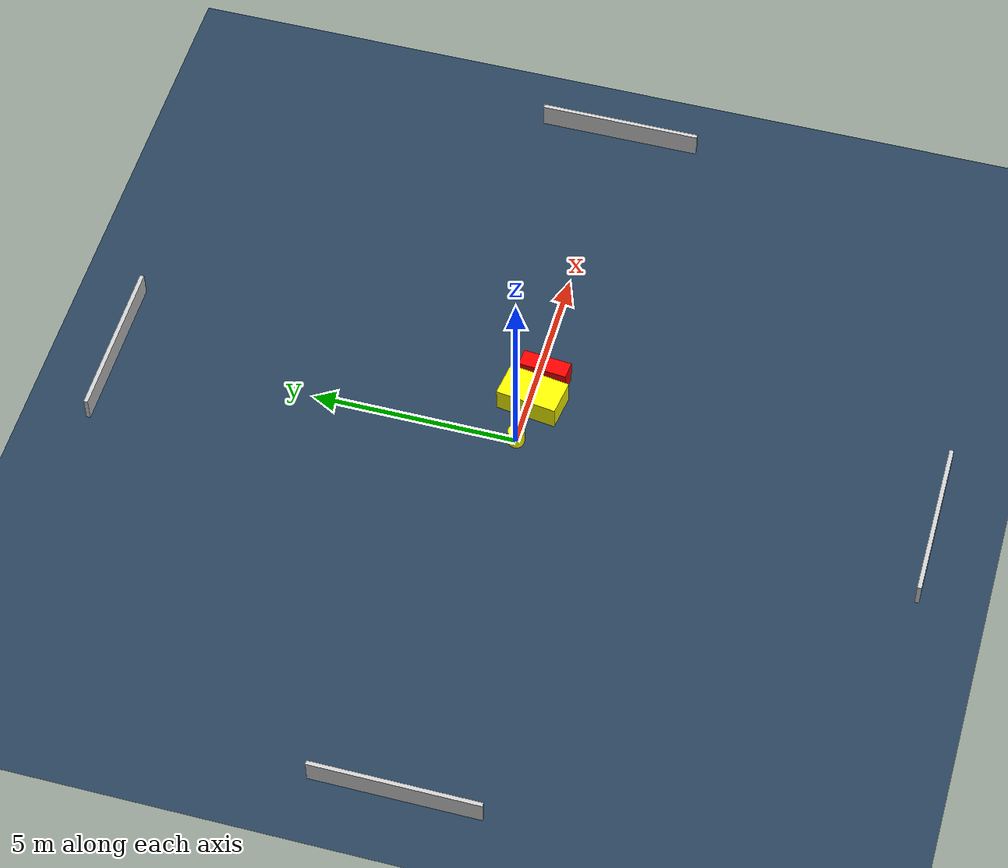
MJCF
<?xml version="1.0" ?>
<mujoco model="generated_environment">
  <option timestep="0.01" integrator="RK4" cone="elliptic"/>
  <default>
    <geom density="1"/>
  </default>
  <asset>
    <texture builtin="gradient" height="3072" name="skybox" rgb1="0.3 0.5 0.7" rgb2="0 0 0" type="skybox" width="512"/>
    <texture builtin="checker" height="300" name="groundplane" rgb1="0.2 0.3 0.4" rgb2="0.1 0.2 0.3" type="2d" width="300"/>
    <material name="groundplane" reflectance="0.2" texrepeat="5 5" texture="groundplane"/>
  </asset>
  <worldbody>
    <light dir="0 0 -1" directional="true" pos="0 0 1.5"/>
    <geom condim="3" friction="0.5 0.005 0.001" material="groundplane" name="floor" pos="0 0 0" size="0 0 0.05" type="plane"/>
    <body name="walls">
      <geom name="wall_1" condim="4" pos="-10.0 0.0 0.3" rgba="0.800000011920929 0.800000011920929 0.800000011920929 1.0" size="0.05 2.0 0.3" type="box"/>
      <geom name="wall_2" condim="4" pos="10.0 0.0 0.3" rgba="0.800000011920929 0.800000011920929 0.800000011920929 1.0" size="0.05 2.0 0.3" type="box"/>
      <geom name="wall_3" condim="4" pos="0.0 -10.0 0.3" rgba="0.800000011920929 0.800000011920929 0.800000011920929 1.0" size="2.0 0.05 0.3" type="box"/>
      <geom name="wall_4" condim="4" pos="0.0 10.0 0.3" rgba="0.800000011920929 0.800000011920929 0.800000011920929 1.0" size="2.0 0.05 0.3" type="box"/>
    </body>
    <body name="robot">
      <joint name="joint_x" type="slide" pos="0 0 0" axis="1 0 0"/>
      <joint name="joint_y" type="slide" pos="0 0 0" axis="0 1 0"/>
      <geom name="robot" type="cylinder" pos="0.0 0.0 0.2" size="0.2 0.2 0.0" mass="5.0" friction="1.0 0.005 0.0001" condim="4" rgba="1.0 1.0 0.0 1.0"/>
    </body>
    <body name="obstacle_1_movable">
      <geom name="obstacle_1_movable" condim="4" pos="1.1900652257086677 -0.08108834144404523 0.3" euler="0 0 172.03690092483845" friction="0.0 0.005 0.001" rgba="1.0 1.0 0.0 1.0" size="0.44212193032948294 0.7461738618992595 0.3" type="box" mass="0.1"/>
      <joint type="free"/>
    </body>
    <body name="obstacle_2_static">
      <geom name="obstacle_2_static" condim="4" pos="1.9731693490621527 -0.17304973355786202 0.3" euler="0 0 174.8812447118595" friction="0.0 0.005 0.001" rgba="1.0 0.0 0.0 1.0" size="0.21465542809737403 0.5947379912735777 0.3" type="box"/>
    </body>
  </worldbody>
  <actuator>
    <motor name="actuator_x" joint="joint_x" gear="1" ctrlrange="-1 1"/>
    <motor name="actuator_y" joint="joint_y" gear="1" ctrlrange="-1 1"/>
  </actuator>
</mujoco>
